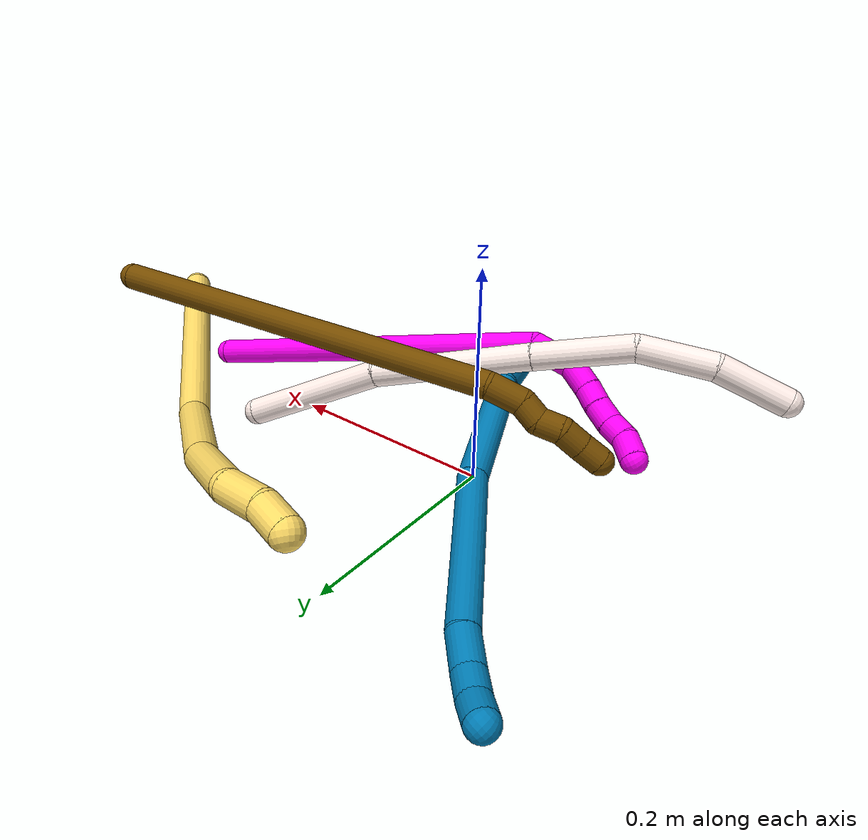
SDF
<sdf version="1.7">
 <world name="default">
  <model name="photoneo_s_sensor">
   <static>1</static>
   <pose>0 0 2 1.57079 1.57079 3.14159</pose>
   <link name="link">
    <inertial><mass>0.1</mass></inertial>
    <sensor name="sensor" type="depth">
     <update_rate>30</update_rate>
     <camera>
      <horizontal_fov>1.22</horizontal_fov>
      <image><width>1920</width><height>1200</height><format>B8G8R8</format></image>
      <clip><near>0.1</near><far>4</far></clip>
      <depth_camera><output>points</output></depth_camera>
     </camera>
     <plugin name="camera_plugin" filename="libgazebo_ros_depth_camera.so">
      <baseline>0.2</baseline>
      <alwaysOn>1</alwaysOn>
      <updateRate>0.0</updateRate>
      <cameraName>camera_ir</cameraName>
      <imageTopicName>/camera/color/image_raw</imageTopicName>
      <cameraInfoTopicName>/camera/color/camera_info</cameraInfoTopicName>
      <depthImageTopicName>/camera/depth/image_raw</depthImageTopicName>
      <depthImageCameraInfoTopicName>/camera/depth/camera_info</depthImageCameraInfoTopicName>
      <pointCloudTopicName>/camera/depth/points</pointCloudTopicName>
      <frameName>fr_optical</frameName>
      <pointCloudCutoff>0.1</pointCloudCutoff>
      <pointCloudCutoffMax>2.0</pointCloudCutoffMax>
      <distortionK1>0</distortionK1>
      <distortionK2>0</distortionK2>
      <distortionK3>0</distortionK3>
      <distortionT1>0</distortionT1>
      <distortionT2>0</distortionT2>
      <CxPrime>0</CxPrime>
      <Cx>0</Cx>
      <Cy>0</Cy>
      <focalLength>0</focalLength>
      <hackBaseline>0</hackBaseline>
     </plugin>
    </sensor>
   </link>
  </model>
  <model name="bin">
   <static>1</static>
   <link name="bottom">
    <collision name="collision-bottom">
     <pose>0 0 -0.01 0 -0 0</pose>
     <geometry><box><size>0.8 0.6 0.02</size></box></geometry>
     <surface>
      <friction><ode><mu>100</mu><mu2>100</mu2></ode></friction>
      <contact><collide_bitmask>65535</collide_bitmask></contact>
     </surface>
    </collision>
   </link>
   <link name="west_wall">
    <collision name="collision-west_wall">
     <pose>-0.41 0 0.1 0 -0 0</pose>
     <geometry><box><size>0.02 0.6 0.2</size></box></geometry>
     <surface>
      <friction><ode><mu>100</mu><mu2>100</mu2></ode></friction>
      <contact><collide_bitmask>65535</collide_bitmask></contact>
     </surface>
    </collision>
   </link>
   <link name="east_wall">
    <collision name="collision-east_wall">
     <pose>0.41 0 0.1 0 -0 0</pose>
     <geometry><box><size>0.02 0.6 0.2</size></box></geometry>
     <surface>
      <friction><ode><mu>100</mu><mu2>100</mu2></ode></friction>
      <contact><collide_bitmask>65535</collide_bitmask></contact>
     </surface>
    </collision>
   </link>
   <link name="south_wall">
    <collision name="collision-south_wall">
     <pose>0 -0.31 0.1 0 -0 0</pose>
     <geometry><box><size>0.8 0.02 0.2</size></box></geometry>
     <surface>
      <friction><ode><mu>100</mu><mu2>100</mu2></ode></friction>
      <contact><collide_bitmask>65535</collide_bitmask></contact>
     </surface>
    </collision>
   </link>
   <link name="north_wall">
    <collision name="collision-north_wall">
     <pose>0 0.31 0.1 0 -0 0</pose>
     <geometry><box><size>0.8 0.02 0.2</size></box></geometry>
     <surface>
      <friction><ode><mu>100</mu><mu2>100</mu2></ode></friction>
      <contact><collide_bitmask>65535</collide_bitmask></contact>
     </surface>
    </collision>
   </link>
  </model>
  <model name="5">
   <static>0</static>
   <link name="5">
    <collision name="collision-cylinder-e_1_1_4">
     <pose>-0.055097 0.057366 -0.090399 -2.57613 -0.475267 1.38994</pose>
     <geometry><cylinder><radius>0.0125</radius><length>0.240819</length></cylinder></geometry>
     <surface>
      <friction><ode><mu>1.16</mu><mu2>1.16</mu2><slip1>0</slip1><slip2>0</slip2></ode></friction>
      <contact><ode><kp>1e+06</kp><kd>1</kd><max_vel>0</max_vel><min_depth>0.001</min_depth></ode></contact>
     </surface>
    </collision>
    <visual name="visual-cylinder-e_1_1_4">
     <pose>-0.055097 0.057366 -0.090399 -2.57613 -0.475267 1.38994</pose>
     <geometry><cylinder><radius>0.0125</radius><length>0.240819</length></cylinder></geometry>
     <material><ambient>1 0.858824 0.4 1</ambient></material>
    </visual>
    <collision name="collision-cylinder-e_2_4_5">
     <pose>-0.148748 0.145343 -0.210265 -2.33716 -0.736892 1.47393</pose>
     <geometry><cylinder><radius>0.0125</radius><length>0.114749</length></cylinder></geometry>
     <surface>
      <friction><ode><mu>1.16</mu><mu2>1.16</mu2><slip1>0</slip1><slip2>0</slip2></ode></friction>
      <contact><ode><kp>1e+06</kp><kd>1</kd><max_vel>0</max_vel><min_depth>0.001</min_depth></ode></contact>
     </surface>
    </collision>
    <visual name="visual-cylinder-e_2_4_5">
     <pose>-0.148748 0.145343 -0.210265 -2.33716 -0.736892 1.47393</pose>
     <geometry><cylinder><radius>0.0125</radius><length>0.114749</length></cylinder></geometry>
     <material><ambient>1 0.858824 0.4 1</ambient></material>
    </visual>
    <collision name="collision-cylinder-e_3_5_6">
     <pose>-0.22009 0.194024 -0.258002 -2.3617 -0.906036 1.73924</pose>
     <geometry><cylinder><radius>0.0125</radius><length>0.083313</length></cylinder></geometry>
     <surface>
      <friction><ode><mu>1.16</mu><mu2>1.16</mu2><slip1>0</slip1><slip2>0</slip2></ode></friction>
      <contact><ode><kp>1e+06</kp><kd>1</kd><max_vel>0</max_vel><min_depth>0.001</min_depth></ode></contact>
     </surface>
    </collision>
    <visual name="visual-cylinder-e_3_5_6">
     <pose>-0.22009 0.194024 -0.258002 -2.3617 -0.906036 1.73924</pose>
     <geometry><cylinder><radius>0.0125</radius><length>0.083313</length></cylinder></geometry>
     <material><ambient>1 0.858824 0.4 1</ambient></material>
    </visual>
    <collision name="collision-cylinder-e_4_6_7">
     <pose>-0.267684 0.212062 -0.285838 3.13829 -0.997259 -3.13553</pose>
     <geometry><cylinder><radius>0.0125</radius><length>0.035259</length></cylinder></geometry>
     <surface>
      <friction><ode><mu>1.16</mu><mu2>1.16</mu2><slip1>0</slip1><slip2>0</slip2></ode></friction>
      <contact><ode><kp>1e+06</kp><kd>1</kd><max_vel>0</max_vel><min_depth>0.001</min_depth></ode></contact>
     </surface>
    </collision>
    <visual name="visual-cylinder-e_4_6_7">
     <pose>-0.267684 0.212062 -0.285838 3.13829 -0.997259 -3.13553</pose>
     <geometry><cylinder><radius>0.0125</radius><length>0.035259</length></cylinder></geometry>
     <material><ambient>1 0.858824 0.4 1</ambient></material>
    </visual>
    <collision name="collision-cylinder-e_5_7_2">
     <pose>-0.291134 0.21234 -0.305018 -3.10944 -0.731881 3.05773</pose>
     <geometry><cylinder><radius>0.0125</radius><length>0.02586</length></cylinder></geometry>
     <surface>
      <friction><ode><mu>1.16</mu><mu2>1.16</mu2><slip1>0</slip1><slip2>0</slip2></ode></friction>
      <contact><ode><kp>1e+06</kp><kd>1</kd><max_vel>0</max_vel><min_depth>0.001</min_depth></ode></contact>
     </surface>
    </collision>
    <visual name="visual-cylinder-e_5_7_2">
     <pose>-0.291134 0.21234 -0.305018 -3.10944 -0.731881 3.05773</pose>
     <geometry><cylinder><radius>0.0125</radius><length>0.02586</length></cylinder></geometry>
     <material><ambient>1 0.858824 0.4 1</ambient></material>
    </visual>
    <collision name="collision-sphere-2">
     <pose>-0.299774 0.212649 -0.314632 0 -0 0</pose>
     <geometry><sphere><radius>0.0125</radius></sphere></geometry>
     <surface>
      <friction><ode><mu>1.16</mu><mu2>1.16</mu2><slip1>0</slip1><slip2>0</slip2></ode></friction>
      <contact><ode><kp>1e+06</kp><kd>1</kd><max_vel>0</max_vel><min_depth>0.001</min_depth></ode></contact>
     </surface>
    </collision>
    <visual name="visual-sphere-2">
     <pose>-0.299774 0.212649 -0.314632 0 -0 0</pose>
     <geometry><sphere><radius>0.0125</radius></sphere></geometry>
     <material><ambient>1 0.858824 0.4 1</ambient></material>
    </visual>
    <collision name="collision-sphere-7">
     <pose>-0.282493 0.212031 -0.295404 0 -0 0</pose>
     <geometry><sphere><radius>0.0125</radius></sphere></geometry>
     <surface>
      <friction><ode><mu>1.16</mu><mu2>1.16</mu2><slip1>0</slip1><slip2>0</slip2></ode></friction>
      <contact><ode><kp>1e+06</kp><kd>1</kd><max_vel>0</max_vel><min_depth>0.001</min_depth></ode></contact>
     </surface>
    </collision>
    <visual name="visual-sphere-7">
     <pose>-0.282493 0.212031 -0.295404 0 -0 0</pose>
     <geometry><sphere><radius>0.0125</radius></sphere></geometry>
     <material><ambient>1 0.858824 0.4 1</ambient></material>
    </visual>
    <collision name="collision-sphere-6">
     <pose>-0.252876 0.212094 -0.276272 0 -0 0</pose>
     <geometry><sphere><radius>0.0125</radius></sphere></geometry>
     <surface>
      <friction><ode><mu>1.16</mu><mu2>1.16</mu2><slip1>0</slip1><slip2>0</slip2></ode></friction>
      <contact><ode><kp>1e+06</kp><kd>1</kd><max_vel>0</max_vel><min_depth>0.001</min_depth></ode></contact>
     </surface>
    </collision>
    <visual name="visual-sphere-6">
     <pose>-0.252876 0.212094 -0.276272 0 -0 0</pose>
     <geometry><sphere><radius>0.0125</radius></sphere></geometry>
     <material><ambient>1 0.858824 0.4 1</ambient></material>
    </visual>
    <collision name="collision-sphere-5">
     <pose>-0.187303 0.175954 -0.239732 0 -0 0</pose>
     <geometry><sphere><radius>0.0125</radius></sphere></geometry>
     <surface>
      <friction><ode><mu>1.16</mu><mu2>1.16</mu2><slip1>0</slip1><slip2>0</slip2></ode></friction>
      <contact><ode><kp>1e+06</kp><kd>1</kd><max_vel>0</max_vel><min_depth>0.001</min_depth></ode></contact>
     </surface>
    </collision>
    <visual name="visual-sphere-5">
     <pose>-0.187303 0.175954 -0.239732 0 -0 0</pose>
     <geometry><sphere><radius>0.0125</radius></sphere></geometry>
     <material><ambient>1 0.858824 0.4 1</ambient></material>
    </visual>
    <collision name="collision-sphere-1">
     <geometry><sphere><radius>0.0125</radius></sphere></geometry>
     <surface>
      <friction><ode><mu>1.16</mu><mu2>1.16</mu2><slip1>0</slip1><slip2>0</slip2></ode></friction>
      <contact><ode><kp>1e+06</kp><kd>1</kd><max_vel>0</max_vel><min_depth>0.001</min_depth></ode></contact>
     </surface>
    </collision>
    <visual name="visual-sphere-1">
     <geometry><sphere><radius>0.0125</radius></sphere></geometry>
     <material><ambient>1 0.858824 0.4 1</ambient></material>
    </visual>
    <collision name="collision-sphere-4">
     <pose>-0.110193 0.114732 -0.180798 0 -0 0</pose>
     <geometry><sphere><radius>0.0125</radius></sphere></geometry>
     <surface>
      <friction><ode><mu>1.16</mu><mu2>1.16</mu2><slip1>0</slip1><slip2>0</slip2></ode></friction>
      <contact><ode><kp>1e+06</kp><kd>1</kd><max_vel>0</max_vel><min_depth>0.001</min_depth></ode></contact>
     </surface>
    </collision>
    <visual name="visual-sphere-4">
     <pose>-0.110193 0.114732 -0.180798 0 -0 0</pose>
     <geometry><sphere><radius>0.0125</radius></sphere></geometry>
     <material><ambient>1 0.858824 0.4 1</ambient></material>
    </visual>
    <inertial>
     <pose>-0.131281 0.119251 -0.170717 0 -0 0</pose>
     <mass>0.5</mass>
     <inertia><ixx>0.001317</ixx><ixy>0</ixy><ixz>0</ixz><iyy>0.001371</iyy><iyz>0</iyz><izz>-5e-06</izz></inertia>
    </inertial>
   </link>
   <pose>0.348116 0.009416 0.094612 0.591516 0.568151 0.232466</pose>
  </model>
  <model name="9">
   <static>0</static>
   <link name="9">
    <collision name="collision-cylinder-e_1_1_4">
     <pose>-0.009858 0.066425 -0.022774 -1.90109 -0.13948 0.194968</pose>
     <geometry><cylinder><radius>0.0125</radius><length>0.141819</length></cylinder></geometry>
     <surface>
      <friction><ode><mu>1.16</mu><mu2>1.16</mu2><slip1>0</slip1><slip2>0</slip2></ode></friction>
      <contact><ode><kp>1e+06</kp><kd>1</kd><max_vel>0</max_vel><min_depth>0.001</min_depth></ode></contact>
     </surface>
    </collision>
    <visual name="visual-cylinder-e_1_1_4">
     <pose>-0.009858 0.066425 -0.022774 -1.90109 -0.13948 0.194968</pose>
     <geometry><cylinder><radius>0.0125</radius><length>0.141819</length></cylinder></geometry>
     <material><ambient>0 0.490196 0.709804 1</ambient></material>
    </visual>
    <collision name="collision-cylinder-e_2_4_5">
     <pose>-0.043613 0.1767 -0.0874 -2.3329 -0.375504 0.835666</pose>
     <geometry><cylinder><radius>0.0125</radius><length>0.130314</length></cylinder></geometry>
     <surface>
      <friction><ode><mu>1.16</mu><mu2>1.16</mu2><slip1>0</slip1><slip2>0</slip2></ode></friction>
      <contact><ode><kp>1e+06</kp><kd>1</kd><max_vel>0</max_vel><min_depth>0.001</min_depth></ode></contact>
     </surface>
    </collision>
    <visual name="visual-cylinder-e_2_4_5">
     <pose>-0.043613 0.1767 -0.0874 -2.3329 -0.375504 0.835666</pose>
     <geometry><cylinder><radius>0.0125</radius><length>0.130314</length></cylinder></geometry>
     <material><ambient>0 0.490196 0.709804 1</ambient></material>
    </visual>
    <collision name="collision-cylinder-e_3_5_6">
     <pose>-0.105613 0.272586 -0.170049 -2.2357 -0.522793 1.00517</pose>
     <geometry><cylinder><radius>0.0125</radius><length>0.152632</length></cylinder></geometry>
     <surface>
      <friction><ode><mu>1.16</mu><mu2>1.16</mu2><slip1>0</slip1><slip2>0</slip2></ode></friction>
      <contact><ode><kp>1e+06</kp><kd>1</kd><max_vel>0</max_vel><min_depth>0.001</min_depth></ode></contact>
     </surface>
    </collision>
    <visual name="visual-cylinder-e_3_5_6">
     <pose>-0.105613 0.272586 -0.170049 -2.2357 -0.522793 1.00517</pose>
     <geometry><cylinder><radius>0.0125</radius><length>0.152632</length></cylinder></geometry>
     <material><ambient>0 0.490196 0.709804 1</ambient></material>
    </visual>
    <collision name="collision-cylinder-e_4_6_7">
     <pose>-0.154117 0.334439 -0.21793 -2.19595 -0.709679 1.25378</pose>
     <geometry><cylinder><radius>0.0125</radius><length>0.031918</length></cylinder></geometry>
     <surface>
      <friction><ode><mu>1.16</mu><mu2>1.16</mu2><slip1>0</slip1><slip2>0</slip2></ode></friction>
      <contact><ode><kp>1e+06</kp><kd>1</kd><max_vel>0</max_vel><min_depth>0.001</min_depth></ode></contact>
     </surface>
    </collision>
    <visual name="visual-cylinder-e_4_6_7">
     <pose>-0.154117 0.334439 -0.21793 -2.19595 -0.709679 1.25378</pose>
     <geometry><cylinder><radius>0.0125</radius><length>0.031918</length></cylinder></geometry>
     <material><ambient>0 0.490196 0.709804 1</ambient></material>
    </visual>
    <collision name="collision-cylinder-e_5_7_8">
     <pose>-0.171105 0.352397 -0.228895 -2.0155 -0.631078 0.954592</pose>
     <geometry><cylinder><radius>0.0125</radius><length>0.022338</length></cylinder></geometry>
     <surface>
      <friction><ode><mu>1.16</mu><mu2>1.16</mu2><slip1>0</slip1><slip2>0</slip2></ode></friction>
      <contact><ode><kp>1e+06</kp><kd>1</kd><max_vel>0</max_vel><min_depth>0.001</min_depth></ode></contact>
     </surface>
    </collision>
    <visual name="visual-cylinder-e_5_7_8">
     <pose>-0.171105 0.352397 -0.228895 -2.0155 -0.631078 0.954592</pose>
     <geometry><cylinder><radius>0.0125</radius><length>0.022338</length></cylinder></geometry>
     <material><ambient>0 0.490196 0.709804 1</ambient></material>
    </visual>
    <collision name="collision-cylinder-e_6_8_2">
     <pose>-0.183094 0.369303 -0.234787 -1.79654 -0.540659 0.669726</pose>
     <geometry><cylinder><radius>0.0125</radius><length>0.020979</length></cylinder></geometry>
     <surface>
      <friction><ode><mu>1.16</mu><mu2>1.16</mu2><slip1>0</slip1><slip2>0</slip2></ode></friction>
      <contact><ode><kp>1e+06</kp><kd>1</kd><max_vel>0</max_vel><min_depth>0.001</min_depth></ode></contact>
     </surface>
    </collision>
    <visual name="visual-cylinder-e_6_8_2">
     <pose>-0.183094 0.369303 -0.234787 -1.79654 -0.540659 0.669726</pose>
     <geometry><cylinder><radius>0.0125</radius><length>0.020979</length></cylinder></geometry>
     <material><ambient>0 0.490196 0.709804 1</ambient></material>
    </visual>
    <collision name="collision-sphere-2">
     <pose>-0.188493 0.378068 -0.2368 0 -0 0</pose>
     <geometry><sphere><radius>0.0125</radius></sphere></geometry>
     <surface>
      <friction><ode><mu>1.16</mu><mu2>1.16</mu2><slip1>0</slip1><slip2>0</slip2></ode></friction>
      <contact><ode><kp>1e+06</kp><kd>1</kd><max_vel>0</max_vel><min_depth>0.001</min_depth></ode></contact>
     </surface>
    </collision>
    <visual name="visual-sphere-2">
     <pose>-0.188493 0.378068 -0.2368 0 -0 0</pose>
     <geometry><sphere><radius>0.0125</radius></sphere></geometry>
     <material><ambient>0 0.490196 0.709804 1</ambient></material>
    </visual>
    <collision name="collision-sphere-4">
     <pose>-0.019717 0.13285 -0.045548 0 -0 0</pose>
     <geometry><sphere><radius>0.0125</radius></sphere></geometry>
     <surface>
      <friction><ode><mu>1.16</mu><mu2>1.16</mu2><slip1>0</slip1><slip2>0</slip2></ode></friction>
      <contact><ode><kp>1e+06</kp><kd>1</kd><max_vel>0</max_vel><min_depth>0.001</min_depth></ode></contact>
     </surface>
    </collision>
    <visual name="visual-sphere-4">
     <pose>-0.019717 0.13285 -0.045548 0 -0 0</pose>
     <geometry><sphere><radius>0.0125</radius></sphere></geometry>
     <material><ambient>0 0.490196 0.709804 1</ambient></material>
    </visual>
    <collision name="collision-sphere-1">
     <geometry><sphere><radius>0.0125</radius></sphere></geometry>
     <surface>
      <friction><ode><mu>1.16</mu><mu2>1.16</mu2><slip1>0</slip1><slip2>0</slip2></ode></friction>
      <contact><ode><kp>1e+06</kp><kd>1</kd><max_vel>0</max_vel><min_depth>0.001</min_depth></ode></contact>
     </surface>
    </collision>
    <visual name="visual-sphere-1">
     <geometry><sphere><radius>0.0125</radius></sphere></geometry>
     <material><ambient>0 0.490196 0.709804 1</ambient></material>
    </visual>
    <collision name="collision-sphere-8">
     <pose>-0.177695 0.360537 -0.232774 0 -0 0</pose>
     <geometry><sphere><radius>0.0125</radius></sphere></geometry>
     <surface>
      <friction><ode><mu>1.16</mu><mu2>1.16</mu2><slip1>0</slip1><slip2>0</slip2></ode></friction>
      <contact><ode><kp>1e+06</kp><kd>1</kd><max_vel>0</max_vel><min_depth>0.001</min_depth></ode></contact>
     </surface>
    </collision>
    <visual name="visual-sphere-8">
     <pose>-0.177695 0.360537 -0.232774 0 -0 0</pose>
     <geometry><sphere><radius>0.0125</radius></sphere></geometry>
     <material><ambient>0 0.490196 0.709804 1</ambient></material>
    </visual>
    <collision name="collision-sphere-5">
     <pose>-0.067508 0.22055 -0.129253 0 -0 0</pose>
     <geometry><sphere><radius>0.0125</radius></sphere></geometry>
     <surface>
      <friction><ode><mu>1.16</mu><mu2>1.16</mu2><slip1>0</slip1><slip2>0</slip2></ode></friction>
      <contact><ode><kp>1e+06</kp><kd>1</kd><max_vel>0</max_vel><min_depth>0.001</min_depth></ode></contact>
     </surface>
    </collision>
    <visual name="visual-sphere-5">
     <pose>-0.067508 0.22055 -0.129253 0 -0 0</pose>
     <geometry><sphere><radius>0.0125</radius></sphere></geometry>
     <material><ambient>0 0.490196 0.709804 1</ambient></material>
    </visual>
    <collision name="collision-sphere-6">
     <pose>-0.143718 0.324623 -0.210846 0 -0 0</pose>
     <geometry><sphere><radius>0.0125</radius></sphere></geometry>
     <surface>
      <friction><ode><mu>1.16</mu><mu2>1.16</mu2><slip1>0</slip1><slip2>0</slip2></ode></friction>
      <contact><ode><kp>1e+06</kp><kd>1</kd><max_vel>0</max_vel><min_depth>0.001</min_depth></ode></contact>
     </surface>
    </collision>
    <visual name="visual-sphere-6">
     <pose>-0.143718 0.324623 -0.210846 0 -0 0</pose>
     <geometry><sphere><radius>0.0125</radius></sphere></geometry>
     <material><ambient>0 0.490196 0.709804 1</ambient></material>
    </visual>
    <collision name="collision-sphere-7">
     <pose>-0.164515 0.344256 -0.225015 0 -0 0</pose>
     <geometry><sphere><radius>0.0125</radius></sphere></geometry>
     <surface>
      <friction><ode><mu>1.16</mu><mu2>1.16</mu2><slip1>0</slip1><slip2>0</slip2></ode></friction>
      <contact><ode><kp>1e+06</kp><kd>1</kd><max_vel>0</max_vel><min_depth>0.001</min_depth></ode></contact>
     </surface>
    </collision>
    <visual name="visual-sphere-7">
     <pose>-0.164515 0.344256 -0.225015 0 -0 0</pose>
     <geometry><sphere><radius>0.0125</radius></sphere></geometry>
     <material><ambient>0 0.490196 0.709804 1</ambient></material>
    </visual>
    <inertial>
     <pose>-0.071568 0.200693 -0.115138 0 -0 0</pose>
     <mass>0.5</mass>
     <inertia>
      <ixx>0.000886</ixx>
      <ixy>0</ixy>
      <ixz>0</ixz>
      <iyy>0.000313</iyy>
      <iyz>0</iyz>
      <izz>-0.000326</izz>
     </inertia>
    </inertial>
   </link>
   <pose>0.061627 -0.166743 0.021068 0.863658 -0.535636 0.034627</pose>
  </model>
  <model name="10">
   <static>0</static>
   <link name="10">
    <collision name="collision-cylinder-e_1_1_4">
     <pose>-0.081131 0.03292 -0.148147 -2.92293 -0.490941 2.31567</pose>
     <geometry><cylinder><radius>0.0125</radius><length>0.344172</length></cylinder></geometry>
     <surface>
      <friction><ode><mu>1.16</mu><mu2>1.16</mu2><slip1>0</slip1><slip2>0</slip2></ode></friction>
      <contact><ode><kp>1e+06</kp><kd>1</kd><max_vel>0</max_vel><min_depth>0.001</min_depth></ode></contact>
     </surface>
    </collision>
    <visual name="visual-cylinder-e_1_1_4">
     <pose>-0.081131 0.03292 -0.148147 -2.92293 -0.490941 2.31567</pose>
     <geometry><cylinder><radius>0.0125</radius><length>0.344172</length></cylinder></geometry>
     <material><ambient>1 0 0.964706 1</ambient></material>
    </visual>
    <collision name="collision-cylinder-e_2_4_5">
     <pose>-0.178453 0.073956 -0.306811 -2.48434 -0.883716 1.89246</pose>
     <geometry><cylinder><radius>0.0125</radius><length>0.041885</length></cylinder></geometry>
     <surface>
      <friction><ode><mu>1.16</mu><mu2>1.16</mu2><slip1>0</slip1><slip2>0</slip2></ode></friction>
      <contact><ode><kp>1e+06</kp><kd>1</kd><max_vel>0</max_vel><min_depth>0.001</min_depth></ode></contact>
     </surface>
    </collision>
    <visual name="visual-cylinder-e_2_4_5">
     <pose>-0.178453 0.073956 -0.306811 -2.48434 -0.883716 1.89246</pose>
     <geometry><cylinder><radius>0.0125</radius><length>0.041885</length></cylinder></geometry>
     <material><ambient>1 0 0.964706 1</ambient></material>
    </visual>
    <collision name="collision-cylinder-e_3_5_6">
     <pose>-0.20672 0.087637 -0.318727 -1.81729 -1.12722 1.36247</pose>
     <geometry><cylinder><radius>0.0125</radius><length>0.026742</length></cylinder></geometry>
     <surface>
      <friction><ode><mu>1.16</mu><mu2>1.16</mu2><slip1>0</slip1><slip2>0</slip2></ode></friction>
      <contact><ode><kp>1e+06</kp><kd>1</kd><max_vel>0</max_vel><min_depth>0.001</min_depth></ode></contact>
     </surface>
    </collision>
    <visual name="visual-cylinder-e_3_5_6">
     <pose>-0.20672 0.087637 -0.318727 -1.81729 -1.12722 1.36247</pose>
     <geometry><cylinder><radius>0.0125</radius><length>0.026742</length></cylinder></geometry>
     <material><ambient>1 0 0.964706 1</ambient></material>
    </visual>
    <collision name="collision-cylinder-e_4_6_7">
     <pose>-0.22869 0.095878 -0.320256 -1.61882 -1.30632 1.35297</pose>
     <geometry><cylinder><radius>0.0125</radius><length>0.0205</length></cylinder></geometry>
     <surface>
      <friction><ode><mu>1.16</mu><mu2>1.16</mu2><slip1>0</slip1><slip2>0</slip2></ode></friction>
      <contact><ode><kp>1e+06</kp><kd>1</kd><max_vel>0</max_vel><min_depth>0.001</min_depth></ode></contact>
     </surface>
    </collision>
    <visual name="visual-cylinder-e_4_6_7">
     <pose>-0.22869 0.095878 -0.320256 -1.61882 -1.30632 1.35297</pose>
     <geometry><cylinder><radius>0.0125</radius><length>0.0205</length></cylinder></geometry>
     <material><ambient>1 0 0.964706 1</ambient></material>
    </visual>
    <collision name="collision-cylinder-e_5_7_8">
     <pose>-0.248957 0.102048 -0.321576 -1.89933 -1.22889 1.55663</pose>
     <geometry><cylinder><radius>0.0125</radius><length>0.022021</length></cylinder></geometry>
     <surface>
      <friction><ode><mu>1.16</mu><mu2>1.16</mu2><slip1>0</slip1><slip2>0</slip2></ode></friction>
      <contact><ode><kp>1e+06</kp><kd>1</kd><max_vel>0</max_vel><min_depth>0.001</min_depth></ode></contact>
     </surface>
    </collision>
    <visual name="visual-cylinder-e_5_7_8">
     <pose>-0.248957 0.102048 -0.321576 -1.89933 -1.22889 1.55663</pose>
     <geometry><cylinder><radius>0.0125</radius><length>0.022021</length></cylinder></geometry>
     <material><ambient>1 0 0.964706 1</ambient></material>
    </visual>
    <collision name="collision-cylinder-e_6_8_9">
     <pose>-0.269202 0.106851 -0.325435 -2.6856 -1.27841 2.53645</pose>
     <geometry><cylinder><radius>0.0125</radius><length>0.020619</length></cylinder></geometry>
     <surface>
      <friction><ode><mu>1.16</mu><mu2>1.16</mu2><slip1>0</slip1><slip2>0</slip2></ode></friction>
      <contact><ode><kp>1e+06</kp><kd>1</kd><max_vel>0</max_vel><min_depth>0.001</min_depth></ode></contact>
     </surface>
    </collision>
    <visual name="visual-cylinder-e_6_8_9">
     <pose>-0.269202 0.106851 -0.325435 -2.6856 -1.27841 2.53645</pose>
     <geometry><cylinder><radius>0.0125</radius><length>0.020619</length></cylinder></geometry>
     <material><ambient>1 0 0.964706 1</ambient></material>
    </visual>
    <collision name="collision-cylinder-e_7_9_2">
     <pose>-0.291026 0.109135 -0.327136 -0.790032 -1.45641 0.711879</pose>
     <geometry><cylinder><radius>0.0125</radius><length>0.024062</length></cylinder></geometry>
     <surface>
      <friction><ode><mu>1.16</mu><mu2>1.16</mu2><slip1>0</slip1><slip2>0</slip2></ode></friction>
      <contact><ode><kp>1e+06</kp><kd>1</kd><max_vel>0</max_vel><min_depth>0.001</min_depth></ode></contact>
     </surface>
    </collision>
    <visual name="visual-cylinder-e_7_9_2">
     <pose>-0.291026 0.109135 -0.327136 -0.790032 -1.45641 0.711879</pose>
     <geometry><cylinder><radius>0.0125</radius><length>0.024062</length></cylinder></geometry>
     <material><ambient>1 0 0.964706 1</ambient></material>
    </visual>
    <collision name="collision-sphere-2">
     <pose>-0.302978 0.11011 -0.32617 0 -0 0</pose>
     <geometry><sphere><radius>0.0125</radius></sphere></geometry>
     <surface>
      <friction><ode><mu>1.16</mu><mu2>1.16</mu2><slip1>0</slip1><slip2>0</slip2></ode></friction>
      <contact><ode><kp>1e+06</kp><kd>1</kd><max_vel>0</max_vel><min_depth>0.001</min_depth></ode></contact>
     </surface>
    </collision>
    <visual name="visual-sphere-2">
     <pose>-0.302978 0.11011 -0.32617 0 -0 0</pose>
     <geometry><sphere><radius>0.0125</radius></sphere></geometry>
     <material><ambient>1 0 0.964706 1</ambient></material>
    </visual>
    <collision name="collision-sphere-9">
     <pose>-0.279074 0.10816 -0.328103 0 -0 0</pose>
     <geometry><sphere><radius>0.0125</radius></sphere></geometry>
     <surface>
      <friction><ode><mu>1.16</mu><mu2>1.16</mu2><slip1>0</slip1><slip2>0</slip2></ode></friction>
      <contact><ode><kp>1e+06</kp><kd>1</kd><max_vel>0</max_vel><min_depth>0.001</min_depth></ode></contact>
     </surface>
    </collision>
    <visual name="visual-sphere-9">
     <pose>-0.279074 0.10816 -0.328103 0 -0 0</pose>
     <geometry><sphere><radius>0.0125</radius></sphere></geometry>
     <material><ambient>1 0 0.964706 1</ambient></material>
    </visual>
    <collision name="collision-sphere-4">
     <pose>-0.162262 0.065841 -0.296295 0 -0 0</pose>
     <geometry><sphere><radius>0.0125</radius></sphere></geometry>
     <surface>
      <friction><ode><mu>1.16</mu><mu2>1.16</mu2><slip1>0</slip1><slip2>0</slip2></ode></friction>
      <contact><ode><kp>1e+06</kp><kd>1</kd><max_vel>0</max_vel><min_depth>0.001</min_depth></ode></contact>
     </surface>
    </collision>
    <visual name="visual-sphere-4">
     <pose>-0.162262 0.065841 -0.296295 0 -0 0</pose>
     <geometry><sphere><radius>0.0125</radius></sphere></geometry>
     <material><ambient>1 0 0.964706 1</ambient></material>
    </visual>
    <collision name="collision-sphere-1">
     <geometry><sphere><radius>0.0125</radius></sphere></geometry>
     <surface>
      <friction><ode><mu>1.16</mu><mu2>1.16</mu2><slip1>0</slip1><slip2>0</slip2></ode></friction>
      <contact><ode><kp>1e+06</kp><kd>1</kd><max_vel>0</max_vel><min_depth>0.001</min_depth></ode></contact>
     </surface>
    </collision>
    <visual name="visual-sphere-1">
     <geometry><sphere><radius>0.0125</radius></sphere></geometry>
     <material><ambient>1 0 0.964706 1</ambient></material>
    </visual>
    <collision name="collision-sphere-8">
     <pose>-0.25933 0.105543 -0.322767 0 -0 0</pose>
     <geometry><sphere><radius>0.0125</radius></sphere></geometry>
     <surface>
      <friction><ode><mu>1.16</mu><mu2>1.16</mu2><slip1>0</slip1><slip2>0</slip2></ode></friction>
      <contact><ode><kp>1e+06</kp><kd>1</kd><max_vel>0</max_vel><min_depth>0.001</min_depth></ode></contact>
     </surface>
    </collision>
    <visual name="visual-sphere-8">
     <pose>-0.25933 0.105543 -0.322767 0 -0 0</pose>
     <geometry><sphere><radius>0.0125</radius></sphere></geometry>
     <material><ambient>1 0 0.964706 1</ambient></material>
    </visual>
    <collision name="collision-sphere-5">
     <pose>-0.194643 0.082072 -0.317327 0 -0 0</pose>
     <geometry><sphere><radius>0.0125</radius></sphere></geometry>
     <surface>
      <friction><ode><mu>1.16</mu><mu2>1.16</mu2><slip1>0</slip1><slip2>0</slip2></ode></friction>
      <contact><ode><kp>1e+06</kp><kd>1</kd><max_vel>0</max_vel><min_depth>0.001</min_depth></ode></contact>
     </surface>
    </collision>
    <visual name="visual-sphere-5">
     <pose>-0.194643 0.082072 -0.317327 0 -0 0</pose>
     <geometry><sphere><radius>0.0125</radius></sphere></geometry>
     <material><ambient>1 0 0.964706 1</ambient></material>
    </visual>
    <collision name="collision-sphere-6">
     <pose>-0.218797 0.093201 -0.320127 0 -0 0</pose>
     <geometry><sphere><radius>0.0125</radius></sphere></geometry>
     <surface>
      <friction><ode><mu>1.16</mu><mu2>1.16</mu2><slip1>0</slip1><slip2>0</slip2></ode></friction>
      <contact><ode><kp>1e+06</kp><kd>1</kd><max_vel>0</max_vel><min_depth>0.001</min_depth></ode></contact>
     </surface>
    </collision>
    <visual name="visual-sphere-6">
     <pose>-0.218797 0.093201 -0.320127 0 -0 0</pose>
     <geometry><sphere><radius>0.0125</radius></sphere></geometry>
     <material><ambient>1 0 0.964706 1</ambient></material>
    </visual>
    <collision name="collision-sphere-7">
     <pose>-0.238584 0.098554 -0.320385 0 -0 0</pose>
     <geometry><sphere><radius>0.0125</radius></sphere></geometry>
     <surface>
      <friction><ode><mu>1.16</mu><mu2>1.16</mu2><slip1>0</slip1><slip2>0</slip2></ode></friction>
      <contact><ode><kp>1e+06</kp><kd>1</kd><max_vel>0</max_vel><min_depth>0.001</min_depth></ode></contact>
     </surface>
    </collision>
    <visual name="visual-sphere-7">
     <pose>-0.238584 0.098554 -0.320385 0 -0 0</pose>
     <geometry><sphere><radius>0.0125</radius></sphere></geometry>
     <material><ambient>1 0 0.964706 1</ambient></material>
    </visual>
    <inertial>
     <pose>-0.127298 0.051627 -0.201181 0 -0 0</pose>
     <mass>0.5</mass>
     <inertia>
      <ixx>0.000154</ixx>
      <ixy>0</ixy>
      <ixz>0</ixz>
      <iyy>0.004755</iyy>
      <iyz>0</iyz>
      <izz>0.00094</izz>
     </inertia>
    </inertial>
   </link>
   <pose>0.33685 -0.012718 0.011498 -2.14966 -0.222177 -0.679943</pose>
  </model>
  <model name="11">
   <static>0</static>
   <link name="11">
    <collision name="collision-cylinder-e_1_1_4">
     <pose>-0.055371 -0.035934 0.007105 1.3756 -0.986353 -0.831715</pose>
     <geometry><cylinder><radius>0.0125</radius><length>0.132781</length></cylinder></geometry>
     <surface>
      <friction><ode><mu>1.16</mu><mu2>1.16</mu2><slip1>0</slip1><slip2>0</slip2></ode></friction>
      <contact><ode><kp>1e+06</kp><kd>1</kd><max_vel>0</max_vel><min_depth>0.001</min_depth></ode></contact>
     </surface>
    </collision>
    <visual name="visual-cylinder-e_1_1_4">
     <pose>-0.055371 -0.035934 0.007105 1.3756 -0.986353 -0.831715</pose>
     <geometry><cylinder><radius>0.0125</radius><length>0.132781</length></cylinder></geometry>
     <material><ambient>1 0.933333 0.909804 1</ambient></material>
    </visual>
    <collision name="collision-cylinder-e_2_4_5">
     <pose>-0.165658 -0.115973 0.034699 1.1359 -0.846016 -0.559445</pose>
     <geometry><cylinder><radius>0.0125</radius><length>0.146708</length></cylinder></geometry>
     <surface>
      <friction><ode><mu>1.16</mu><mu2>1.16</mu2><slip1>0</slip1><slip2>0</slip2></ode></friction>
      <contact><ode><kp>1e+06</kp><kd>1</kd><max_vel>0</max_vel><min_depth>0.001</min_depth></ode></contact>
     </surface>
    </collision>
    <visual name="visual-cylinder-e_2_4_5">
     <pose>-0.165658 -0.115973 0.034699 1.1359 -0.846016 -0.559445</pose>
     <geometry><cylinder><radius>0.0125</radius><length>0.146708</length></cylinder></geometry>
     <material><ambient>1 0.933333 0.909804 1</ambient></material>
    </visual>
    <collision name="collision-cylinder-e_3_5_6">
     <pose>-0.253508 -0.186968 0.068773 1.10298 -0.829881 -0.529263</pose>
     <geometry><cylinder><radius>0.0125</radius><length>0.089269</length></cylinder></geometry>
     <surface>
      <friction><ode><mu>1.16</mu><mu2>1.16</mu2><slip1>0</slip1><slip2>0</slip2></ode></friction>
      <contact><ode><kp>1e+06</kp><kd>1</kd><max_vel>0</max_vel><min_depth>0.001</min_depth></ode></contact>
     </surface>
    </collision>
    <visual name="visual-cylinder-e_3_5_6">
     <pose>-0.253508 -0.186968 0.068773 1.10298 -0.829881 -0.529263</pose>
     <geometry><cylinder><radius>0.0125</radius><length>0.089269</length></cylinder></geometry>
     <material><ambient>1 0.933333 0.909804 1</ambient></material>
    </visual>
    <collision name="collision-cylinder-e_4_6_7">
     <pose>-0.303257 -0.237347 0.099304 0.945848 -0.526015 -0.273795</pose>
     <geometry><cylinder><radius>0.0125</radius><length>0.066984</length></cylinder></geometry>
     <surface>
      <friction><ode><mu>1.16</mu><mu2>1.16</mu2><slip1>0</slip1><slip2>0</slip2></ode></friction>
      <contact><ode><kp>1e+06</kp><kd>1</kd><max_vel>0</max_vel><min_depth>0.001</min_depth></ode></contact>
     </surface>
    </collision>
    <visual name="visual-cylinder-e_4_6_7">
     <pose>-0.303257 -0.237347 0.099304 0.945848 -0.526015 -0.273795</pose>
     <geometry><cylinder><radius>0.0125</radius><length>0.066984</length></cylinder></geometry>
     <material><ambient>1 0.933333 0.909804 1</ambient></material>
    </visual>
    <collision name="collision-cylinder-e_5_7_2">
     <pose>-0.329985 -0.282152 0.138153 0.771804 -0.313602 -0.128286</pose>
     <geometry><cylinder><radius>0.0125</radius><length>0.064258</length></cylinder></geometry>
     <surface>
      <friction><ode><mu>1.16</mu><mu2>1.16</mu2><slip1>0</slip1><slip2>0</slip2></ode></friction>
      <contact><ode><kp>1e+06</kp><kd>1</kd><max_vel>0</max_vel><min_depth>0.001</min_depth></ode></contact>
     </surface>
    </collision>
    <visual name="visual-cylinder-e_5_7_2">
     <pose>-0.329985 -0.282152 0.138153 0.771804 -0.313602 -0.128286</pose>
     <geometry><cylinder><radius>0.0125</radius><length>0.064258</length></cylinder></geometry>
     <material><ambient>1 0.933333 0.909804 1</ambient></material>
    </visual>
    <collision name="collision-sphere-2">
     <pose>-0.339896 -0.303467 0.160055 0 -0 0</pose>
     <geometry><sphere><radius>0.0125</radius></sphere></geometry>
     <surface>
      <friction><ode><mu>1.16</mu><mu2>1.16</mu2><slip1>0</slip1><slip2>0</slip2></ode></friction>
      <contact><ode><kp>1e+06</kp><kd>1</kd><max_vel>0</max_vel><min_depth>0.001</min_depth></ode></contact>
     </surface>
    </collision>
    <visual name="visual-sphere-2">
     <pose>-0.339896 -0.303467 0.160055 0 -0 0</pose>
     <geometry><sphere><radius>0.0125</radius></sphere></geometry>
     <material><ambient>1 0.933333 0.909804 1</ambient></material>
    </visual>
    <collision name="collision-sphere-7">
     <pose>-0.320073 -0.260837 0.11625 0 -0 0</pose>
     <geometry><sphere><radius>0.0125</radius></sphere></geometry>
     <surface>
      <friction><ode><mu>1.16</mu><mu2>1.16</mu2><slip1>0</slip1><slip2>0</slip2></ode></friction>
      <contact><ode><kp>1e+06</kp><kd>1</kd><max_vel>0</max_vel><min_depth>0.001</min_depth></ode></contact>
     </surface>
    </collision>
    <visual name="visual-sphere-7">
     <pose>-0.320073 -0.260837 0.11625 0 -0 0</pose>
     <geometry><sphere><radius>0.0125</radius></sphere></geometry>
     <material><ambient>1 0.933333 0.909804 1</ambient></material>
    </visual>
    <collision name="collision-sphere-6">
     <pose>-0.286441 -0.213857 0.082359 0 -0 0</pose>
     <geometry><sphere><radius>0.0125</radius></sphere></geometry>
     <surface>
      <friction><ode><mu>1.16</mu><mu2>1.16</mu2><slip1>0</slip1><slip2>0</slip2></ode></friction>
      <contact><ode><kp>1e+06</kp><kd>1</kd><max_vel>0</max_vel><min_depth>0.001</min_depth></ode></contact>
     </surface>
    </collision>
    <visual name="visual-sphere-6">
     <pose>-0.286441 -0.213857 0.082359 0 -0 0</pose>
     <geometry><sphere><radius>0.0125</radius></sphere></geometry>
     <material><ambient>1 0.933333 0.909804 1</ambient></material>
    </visual>
    <collision name="collision-sphere-5">
     <pose>-0.220574 -0.160078 0.055188 0 -0 0</pose>
     <geometry><sphere><radius>0.0125</radius></sphere></geometry>
     <surface>
      <friction><ode><mu>1.16</mu><mu2>1.16</mu2><slip1>0</slip1><slip2>0</slip2></ode></friction>
      <contact><ode><kp>1e+06</kp><kd>1</kd><max_vel>0</max_vel><min_depth>0.001</min_depth></ode></contact>
     </surface>
    </collision>
    <visual name="visual-sphere-5">
     <pose>-0.220574 -0.160078 0.055188 0 -0 0</pose>
     <geometry><sphere><radius>0.0125</radius></sphere></geometry>
     <material><ambient>1 0.933333 0.909804 1</ambient></material>
    </visual>
    <collision name="collision-sphere-1">
     <geometry><sphere><radius>0.0125</radius></sphere></geometry>
     <surface>
      <friction><ode><mu>1.16</mu><mu2>1.16</mu2><slip1>0</slip1><slip2>0</slip2></ode></friction>
      <contact><ode><kp>1e+06</kp><kd>1</kd><max_vel>0</max_vel><min_depth>0.001</min_depth></ode></contact>
     </surface>
    </collision>
    <visual name="visual-sphere-1">
     <geometry><sphere><radius>0.0125</radius></sphere></geometry>
     <material><ambient>1 0.933333 0.909804 1</ambient></material>
    </visual>
    <collision name="collision-sphere-4">
     <pose>-0.110742 -0.071869 0.01421 0 -0 0</pose>
     <geometry><sphere><radius>0.0125</radius></sphere></geometry>
     <surface>
      <friction><ode><mu>1.16</mu><mu2>1.16</mu2><slip1>0</slip1><slip2>0</slip2></ode></friction>
      <contact><ode><kp>1e+06</kp><kd>1</kd><max_vel>0</max_vel><min_depth>0.001</min_depth></ode></contact>
     </surface>
    </collision>
    <visual name="visual-sphere-4">
     <pose>-0.110742 -0.071869 0.01421 0 -0 0</pose>
     <geometry><sphere><radius>0.0125</radius></sphere></geometry>
     <material><ambient>1 0.933333 0.909804 1</ambient></material>
    </visual>
    <inertial>
     <pose>-0.191607 -0.14501 0.055405 0 -0 0</pose>
     <mass>0.5</mass>
     <inertia>
      <ixx>7.5e-05</ixx>
      <ixy>0</ixy>
      <ixz>0</ixz>
      <iyy>0.000191</iyy>
      <iyz>0</iyz>
      <izz>0.000792</izz>
     </inertia>
    </inertial>
   </link>
   <pose>0.220048 0.055412 0.011515 3.10712 0.6782 1.10013</pose>
  </model>
  <model name="12">
   <static>0</static>
   <link name="12">
    <collision name="collision-cylinder-e_1_1_4">
     <pose>-0.1317 -0.070039 0.121324 0.523552 -0.754542 -0.211539</pose>
     <geometry><cylinder><radius>0.0125</radius><length>0.384551</length></cylinder></geometry>
     <surface>
      <friction><ode><mu>1.16</mu><mu2>1.16</mu2><slip1>0</slip1><slip2>0</slip2></ode></friction>
      <contact><ode><kp>1e+06</kp><kd>1</kd><max_vel>0</max_vel><min_depth>0.001</min_depth></ode></contact>
     </surface>
    </collision>
    <visual name="visual-cylinder-e_1_1_4">
     <pose>-0.1317 -0.070039 0.121324 0.523552 -0.754542 -0.211539</pose>
     <geometry><cylinder><radius>0.0125</radius><length>0.384551</length></cylinder></geometry>
     <material><ambient>0.466667 0.301961 0 1</ambient></material>
    </visual>
    <collision name="collision-cylinder-e_2_4_5">
     <pose>-0.271465 -0.149826 0.252146 0.798407 -0.534914 -0.230174</pose>
     <geometry><cylinder><radius>0.0125</radius><length>0.031641</length></cylinder></geometry>
     <surface>
      <friction><ode><mu>1.16</mu><mu2>1.16</mu2><slip1>0</slip1><slip2>0</slip2></ode></friction>
      <contact><ode><kp>1e+06</kp><kd>1</kd><max_vel>0</max_vel><min_depth>0.001</min_depth></ode></contact>
     </surface>
    </collision>
    <visual name="visual-cylinder-e_2_4_5">
     <pose>-0.271465 -0.149826 0.252146 0.798407 -0.534914 -0.230174</pose>
     <geometry><cylinder><radius>0.0125</radius><length>0.031641</length></cylinder></geometry>
     <material><ambient>0.466667 0.301961 0 1</ambient></material>
    </visual>
    <collision name="collision-cylinder-e_3_5_6">
     <pose>-0.285051 -0.167713 0.264018 1.287 -0.577284 -0.438248</pose>
     <geometry><cylinder><radius>0.0125</radius><length>0.020233</length></cylinder></geometry>
     <surface>
      <friction><ode><mu>1.16</mu><mu2>1.16</mu2><slip1>0</slip1><slip2>0</slip2></ode></friction>
      <contact><ode><kp>1e+06</kp><kd>1</kd><max_vel>0</max_vel><min_depth>0.001</min_depth></ode></contact>
     </surface>
    </collision>
    <visual name="visual-cylinder-e_3_5_6">
     <pose>-0.285051 -0.167713 0.264018 1.287 -0.577284 -0.438248</pose>
     <geometry><cylinder><radius>0.0125</radius><length>0.020233</length></cylinder></geometry>
     <material><ambient>0.466667 0.301961 0 1</ambient></material>
    </visual>
    <collision name="collision-cylinder-e_4_6_7">
     <pose>-0.296469 -0.181351 0.273297 0.672582 -0.588925 -0.211245</pose>
     <geometry><cylinder><radius>0.0125</radius><length>0.021232</length></cylinder></geometry>
     <surface>
      <friction><ode><mu>1.16</mu><mu2>1.16</mu2><slip1>0</slip1><slip2>0</slip2></ode></friction>
      <contact><ode><kp>1e+06</kp><kd>1</kd><max_vel>0</max_vel><min_depth>0.001</min_depth></ode></contact>
     </surface>
    </collision>
    <visual name="visual-cylinder-e_4_6_7">
     <pose>-0.296469 -0.181351 0.273297 0.672582 -0.588925 -0.211245</pose>
     <geometry><cylinder><radius>0.0125</radius><length>0.021232</length></cylinder></geometry>
     <material><ambient>0.466667 0.301961 0 1</ambient></material>
    </visual>
    <collision name="collision-cylinder-e_5_7_8">
     <pose>-0.305665 -0.195671 0.284966 1.07553 -0.317898 -0.190627</pose>
     <geometry><cylinder><radius>0.0125</radius><length>0.021107</length></cylinder></geometry>
     <surface>
      <friction><ode><mu>1.16</mu><mu2>1.16</mu2><slip1>0</slip1><slip2>0</slip2></ode></friction>
      <contact><ode><kp>1e+06</kp><kd>1</kd><max_vel>0</max_vel><min_depth>0.001</min_depth></ode></contact>
     </surface>
    </collision>
    <visual name="visual-cylinder-e_5_7_8">
     <pose>-0.305665 -0.195671 0.284966 1.07553 -0.317898 -0.190627</pose>
     <geometry><cylinder><radius>0.0125</radius><length>0.021107</length></cylinder></geometry>
     <material><ambient>0.466667 0.301961 0 1</ambient></material>
    </visual>
    <collision name="collision-cylinder-e_6_8_2">
     <pose>-0.31302 -0.212913 0.294766 1.03197 -0.392003 -0.224306</pose>
     <geometry><cylinder><radius>0.0125</radius><length>0.021235</length></cylinder></geometry>
     <surface>
      <friction><ode><mu>1.16</mu><mu2>1.16</mu2><slip1>0</slip1><slip2>0</slip2></ode></friction>
      <contact><ode><kp>1e+06</kp><kd>1</kd><max_vel>0</max_vel><min_depth>0.001</min_depth></ode></contact>
     </surface>
    </collision>
    <visual name="visual-cylinder-e_6_8_2">
     <pose>-0.31302 -0.212913 0.294766 1.03197 -0.392003 -0.224306</pose>
     <geometry><cylinder><radius>0.0125</radius><length>0.021235</length></cylinder></geometry>
     <material><ambient>0.466667 0.301961 0 1</ambient></material>
    </visual>
    <collision name="collision-sphere-2">
     <pose>-0.317076 -0.221335 0.299801 0 -0 0</pose>
     <geometry><sphere><radius>0.0125</radius></sphere></geometry>
     <surface>
      <friction><ode><mu>1.16</mu><mu2>1.16</mu2><slip1>0</slip1><slip2>0</slip2></ode></friction>
      <contact><ode><kp>1e+06</kp><kd>1</kd><max_vel>0</max_vel><min_depth>0.001</min_depth></ode></contact>
     </surface>
    </collision>
    <visual name="visual-sphere-2">
     <pose>-0.317076 -0.221335 0.299801 0 -0 0</pose>
     <geometry><sphere><radius>0.0125</radius></sphere></geometry>
     <material><ambient>0.466667 0.301961 0 1</ambient></material>
    </visual>
    <collision name="collision-sphere-4">
     <pose>-0.2634 -0.140078 0.242648 0 -0 0</pose>
     <geometry><sphere><radius>0.0125</radius></sphere></geometry>
     <surface>
      <friction><ode><mu>1.16</mu><mu2>1.16</mu2><slip1>0</slip1><slip2>0</slip2></ode></friction>
      <contact><ode><kp>1e+06</kp><kd>1</kd><max_vel>0</max_vel><min_depth>0.001</min_depth></ode></contact>
     </surface>
    </collision>
    <visual name="visual-sphere-4">
     <pose>-0.2634 -0.140078 0.242648 0 -0 0</pose>
     <geometry><sphere><radius>0.0125</radius></sphere></geometry>
     <material><ambient>0.466667 0.301961 0 1</ambient></material>
    </visual>
    <collision name="collision-sphere-1">
     <geometry><sphere><radius>0.0125</radius></sphere></geometry>
     <surface>
      <friction><ode><mu>1.16</mu><mu2>1.16</mu2><slip1>0</slip1><slip2>0</slip2></ode></friction>
      <contact><ode><kp>1e+06</kp><kd>1</kd><max_vel>0</max_vel><min_depth>0.001</min_depth></ode></contact>
     </surface>
    </collision>
    <visual name="visual-sphere-1">
     <geometry><sphere><radius>0.0125</radius></sphere></geometry>
     <material><ambient>0.466667 0.301961 0 1</ambient></material>
    </visual>
    <collision name="collision-sphere-8">
     <pose>-0.308963 -0.204491 0.289731 0 -0 0</pose>
     <geometry><sphere><radius>0.0125</radius></sphere></geometry>
     <surface>
      <friction><ode><mu>1.16</mu><mu2>1.16</mu2><slip1>0</slip1><slip2>0</slip2></ode></friction>
      <contact><ode><kp>1e+06</kp><kd>1</kd><max_vel>0</max_vel><min_depth>0.001</min_depth></ode></contact>
     </surface>
    </collision>
    <visual name="visual-sphere-8">
     <pose>-0.308963 -0.204491 0.289731 0 -0 0</pose>
     <geometry><sphere><radius>0.0125</radius></sphere></geometry>
     <material><ambient>0.466667 0.301961 0 1</ambient></material>
    </visual>
    <collision name="collision-sphere-5">
     <pose>-0.27953 -0.159575 0.261644 0 -0 0</pose>
     <geometry><sphere><radius>0.0125</radius></sphere></geometry>
     <surface>
      <friction><ode><mu>1.16</mu><mu2>1.16</mu2><slip1>0</slip1><slip2>0</slip2></ode></friction>
      <contact><ode><kp>1e+06</kp><kd>1</kd><max_vel>0</max_vel><min_depth>0.001</min_depth></ode></contact>
     </surface>
    </collision>
    <visual name="visual-sphere-5">
     <pose>-0.27953 -0.159575 0.261644 0 -0 0</pose>
     <geometry><sphere><radius>0.0125</radius></sphere></geometry>
     <material><ambient>0.466667 0.301961 0 1</ambient></material>
    </visual>
    <collision name="collision-sphere-6">
     <pose>-0.290572 -0.175851 0.266392 0 -0 0</pose>
     <geometry><sphere><radius>0.0125</radius></sphere></geometry>
     <surface>
      <friction><ode><mu>1.16</mu><mu2>1.16</mu2><slip1>0</slip1><slip2>0</slip2></ode></friction>
      <contact><ode><kp>1e+06</kp><kd>1</kd><max_vel>0</max_vel><min_depth>0.001</min_depth></ode></contact>
     </surface>
    </collision>
    <visual name="visual-sphere-6">
     <pose>-0.290572 -0.175851 0.266392 0 -0 0</pose>
     <geometry><sphere><radius>0.0125</radius></sphere></geometry>
     <material><ambient>0.466667 0.301961 0 1</ambient></material>
    </visual>
    <collision name="collision-sphere-7">
     <pose>-0.302366 -0.18685 0.280202 0 -0 0</pose>
     <geometry><sphere><radius>0.0125</radius></sphere></geometry>
     <surface>
      <friction><ode><mu>1.16</mu><mu2>1.16</mu2><slip1>0</slip1><slip2>0</slip2></ode></friction>
      <contact><ode><kp>1e+06</kp><kd>1</kd><max_vel>0</max_vel><min_depth>0.001</min_depth></ode></contact>
     </surface>
    </collision>
    <visual name="visual-sphere-7">
     <pose>-0.302366 -0.18685 0.280202 0 -0 0</pose>
     <geometry><sphere><radius>0.0125</radius></sphere></geometry>
     <material><ambient>0.466667 0.301961 0 1</ambient></material>
    </visual>
    <inertial>
     <pose>-0.168792 -0.095139 0.156105 0 -0 0</pose>
     <mass>0.5</mass>
     <inertia>
      <ixx>0.002641</ixx>
      <ixy>0</ixy>
      <ixz>0</ixz>
      <iyy>0.003627</iyy>
      <iyz>0</iyz>
      <izz>0.005023</izz>
     </inertia>
    </inertial>
   </link>
   <pose>0.367523 0.071319 0.119436 1.28069 0.151581 -0.589026</pose>
  </model>
 </world>
</sdf>
